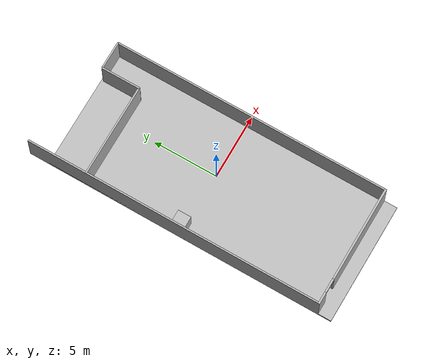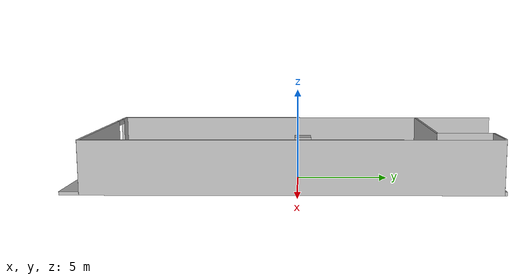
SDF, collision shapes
<?xml version="1.0" ?>
<sdf version="1.5">
    <model name="cafe">
        <static>true</static>
        <link name="link">
            <collision name="main_floor">
                <pose>-0.4 -0.75 0.0948 0 0 0</pose>
                <geometry>
                    <box>
                        <size>9.38 22.63 0.19</size>
                    </box>
                </geometry>
            </collision>
            <collision name="wall_1">
                <pose>-5.03 0.53 1.415 0 0 0</pose>
                <geometry>
                    <box>
                        <size>.12 23.16 2.83</size>
                    </box>
                </geometry>
            </collision>
            <collision name="wall_2">
                <pose>4.24 -.31 1.415 0 0 0</pose>
                <geometry>
                    <box>
                        <size>.12 21.48 2.83</size>
                    </box>
                </geometry>
            </collision>
            <collision name="wall_3">
                <pose>-1.48 7.43 1.415 0 0 0</pose>
                <geometry>
                    <box>
                        <size>7.2 0.12 2.83</size>
                    </box>
                </geometry>
            </collision>
            <collision name="wall_4">
                <pose>2.09 8.9 1.435 0 0 0</pose>
                <geometry>
                    <box>
                        <size>0.12 3.05 2.87</size>
                    </box>
                </geometry>
            </collision>
            <collision name="wall_5">
                <pose>3.155 10.4 1.435 0 0 0</pose>
                <geometry>
                    <box>
                        <size>2.13 0.12 2.87</size>
                    </box>
                </geometry>
            </collision>
            <collision name="wall_6">
                <pose>0.615 -10.98 1.415 0 0 0</pose>
                <geometry>
                    <box>
                        <size>7.36 0.15 2.83</size>
                    </box>
                </geometry>
            </collision>
            <collision name="wall_7">
                <pose>-4.62 -10.98 1.415 0 0 0</pose>
                <geometry>
                    <box>
                        <size>0.93 0.15 2.83</size>
                    </box>
                </geometry>
            </collision>
            <collision name="wall_8">
                <pose>-3.61 -10.98 2.69 0 0 0</pose>
                <geometry>
                    <box>
                        <size>1.09 0.15 0.28</size>
                    </box>
                </geometry>
            </collision>
            <collision name="coke">
                <pose>-4.385 0.26 .95 0 0 0</pose>
                <geometry>
                    <box>
                        <size>1.03 1.03 1.52</size>
                    </box>
                </geometry>
            </collision>
            <visual name="visual">
                <geometry>
                    <mesh>
                        <uri>https://fuel.gazebosim.org/1.0/openrobotics/models/cafe/3/files/meshes/cafe.dae</uri>
                    </mesh>
                </geometry>
            </visual>
        </link>
    </model>
</sdf>
